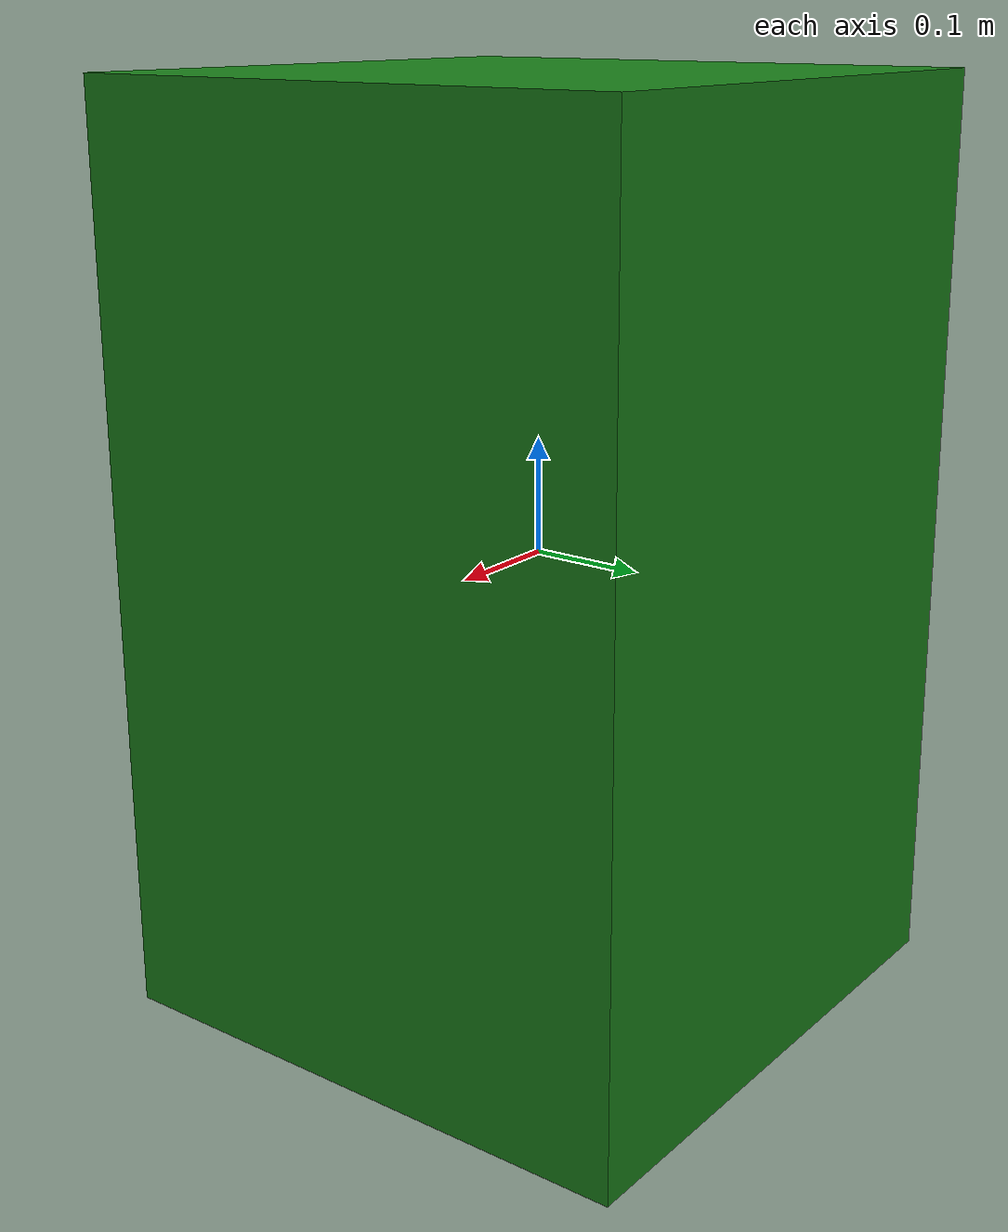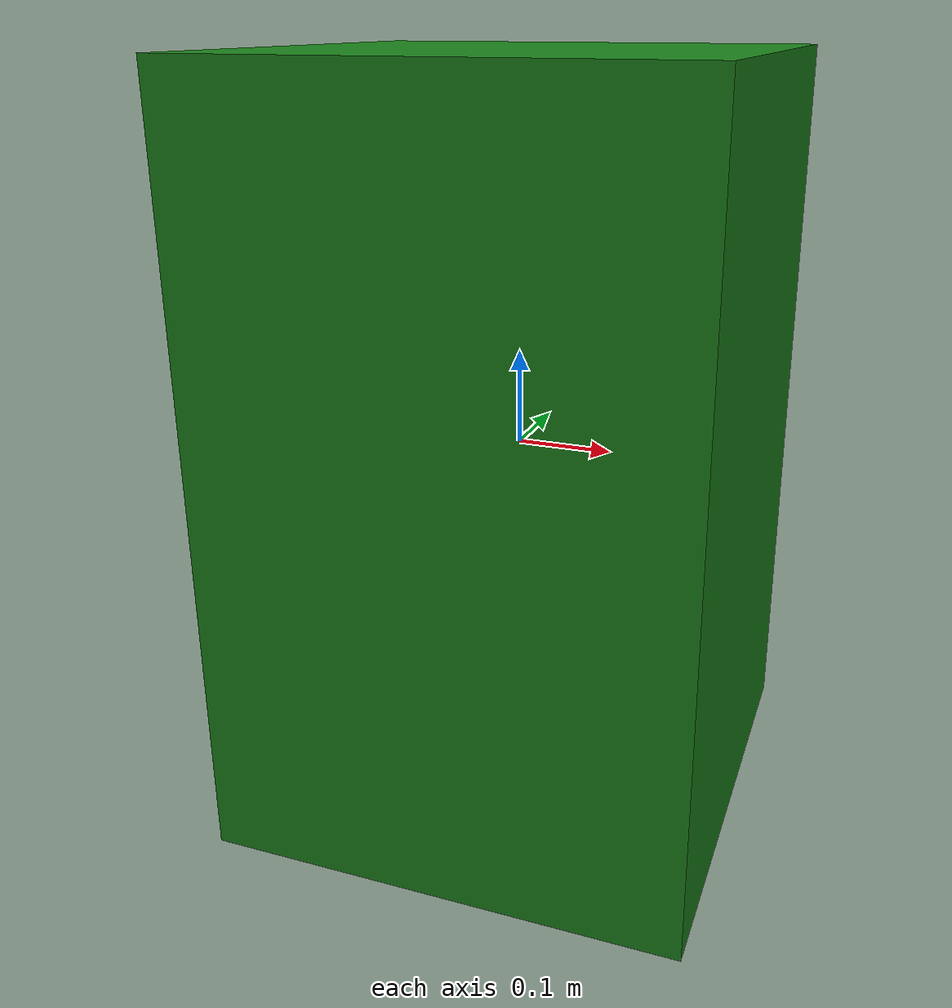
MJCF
<mujoco model="green_block">
  <default>
    <default class="visual">
      <geom group="1" type="box" contype="0" conaffinity="0" density="500" rgba="0.1 0.5 0.1 1"/>
    </default>
    <default class="collision">
      <geom group="0" type="box" density="1000" friction="0.1 0.005 0.0001" solimp="0.95 0.98 0.001" solref="0.004 1" rgba="1 1 1 0.25"/>
    </default>
  </default>
  <worldbody>
    <body>
      <body name="object">
        <geom size="0.25 0.25 0.4" class="visual"/>
        <geom size="0.25 0.25 0.4" class="collision"/>
      </body>
      <site name="bottom_site" pos="0 0 -0.4" rgba="0 0 0 0" size="0.005"/>
      <site name="top_site" pos="0 0 0.4" rgba="0 0 0 0" size="0.005"/>
      <site name="horizontal_radius_site" pos="0.169704 0.169704 0" rgba="0 0 0 0" size="0.005"/>
    </body>
  </worldbody>
</mujoco>
